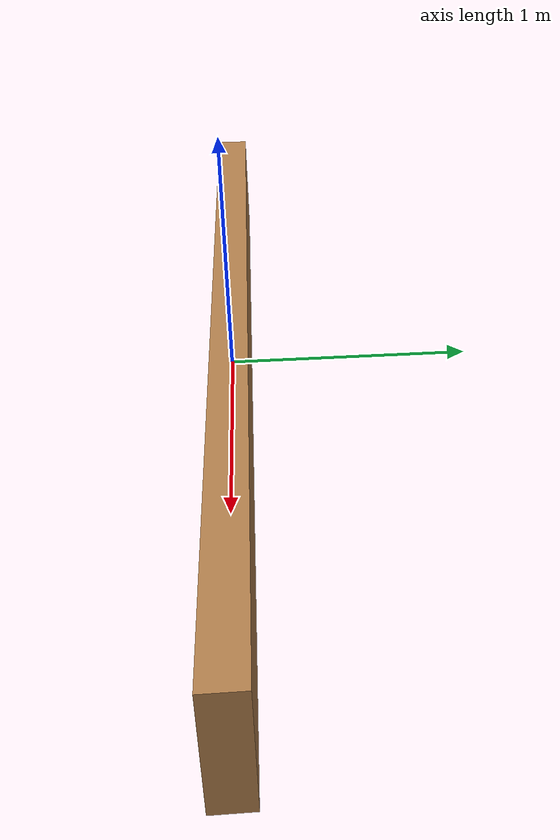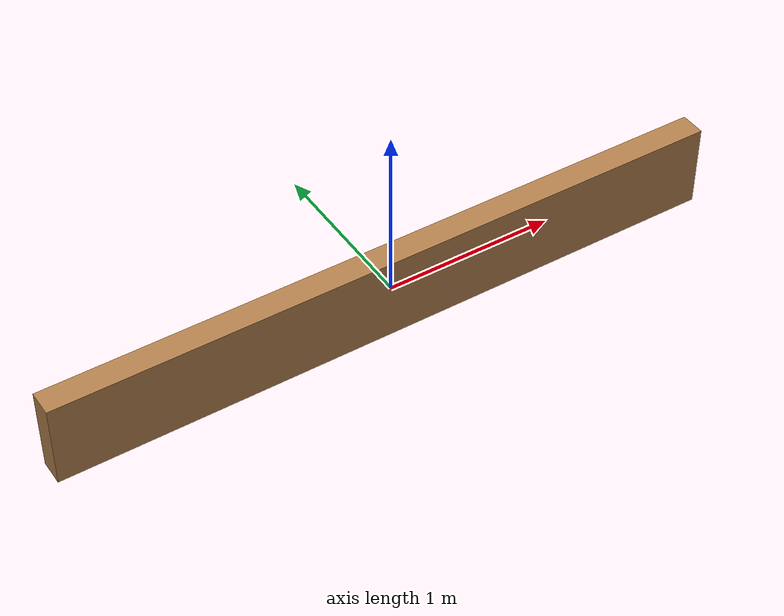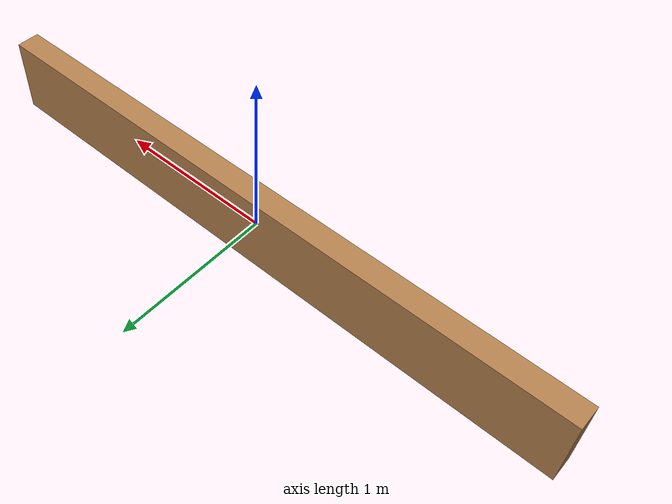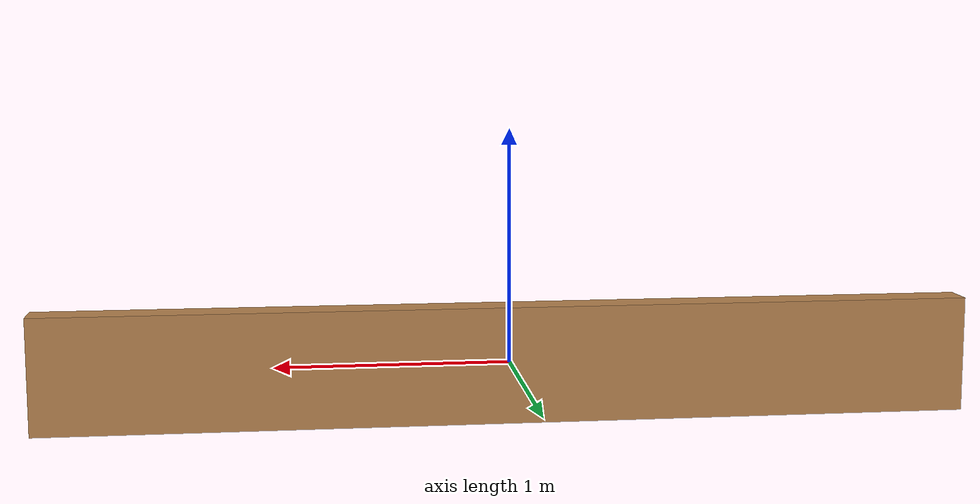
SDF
<?xml version="1.0" ?>
<sdf version="1.6">
  <!--Python Testing-->
  <model name="random">
    <pose frame="">0 0 0 0 0 0</pose>
    <link name="Wall_0">
      <collisions name="Wall_0_Collision">
        <geometry>
          <box>
            <size>4 0.15 0.5</size>
          </box>
          <pose frame="">0 1.925 0 0 -0 0</pose>
        </geometry>
      </collisions>
      <visual name="Wall_0_Visual">
        <geometry>
          <box>
            <size>4 0.15 0.5</size>
          </box>
          <pose frame="">0 1.925 0 0 -0 0</pose>
          <pose frame="">0.000000 0.000000 0.5 0 0 0.000000</pose>
        </geometry>
        <material>
          <script>
            <uri>file://media/materials/scripts/gazebo.material&lt;/uri&gt;</uri>
            <name>Gazebo/Wood</name>
          </script>
          <ambient>1 1 1 1</ambient>
        </material>
      </visual>
    </link>
    <link name="Wall_1">
      <collisions name="Wall_1_Collision">
        <geometry>
          <box>
            <size>4 0.15 0.5</size>
          </box>
          <pose frame="">0 1.925 0 0 -0 0</pose>
        </geometry>
      </collisions>
      <visual name="Wall_1_Visual">
        <geometry>
          <box>
            <size>4 0.15 0.5</size>
          </box>
          <pose frame="">0 1.925 0 0 -0 0</pose>
          <pose frame="">1.000000 0.000000 0.5 0 0 0.000000</pose>
        </geometry>
        <material>
          <script>
            <uri>file://media/materials/scripts/gazebo.material&lt;/uri&gt;</uri>
            <name>Gazebo/Wood</name>
          </script>
          <ambient>1 1 1 1</ambient>
        </material>
      </visual>
    </link>
    <link name="Wall_2">
      <collisions name="Wall_2_Collision">
        <geometry>
          <box>
            <size>4 0.15 0.5</size>
          </box>
          <pose frame="">0 1.925 0 0 -0 0</pose>
        </geometry>
      </collisions>
      <visual name="Wall_2_Visual">
        <geometry>
          <box>
            <size>4 0.15 0.5</size>
          </box>
          <pose frame="">0 1.925 0 0 -0 0</pose>
          <pose frame="">2.000000 0.000000 0.5 0 0 0.000000</pose>
        </geometry>
        <material>
          <script>
            <uri>file://media/materials/scripts/gazebo.material&lt;/uri&gt;</uri>
            <name>Gazebo/Wood</name>
          </script>
          <ambient>1 1 1 1</ambient>
        </material>
      </visual>
    </link>
    <link name="Wall_3">
      <collisions name="Wall_3_Collision">
        <geometry>
          <box>
            <size>4 0.15 0.5</size>
          </box>
          <pose frame="">0 1.925 0 0 -0 0</pose>
        </geometry>
      </collisions>
      <visual name="Wall_3_Visual">
        <geometry>
          <box>
            <size>4 0.15 0.5</size>
          </box>
          <pose frame="">0 1.925 0 0 -0 0</pose>
          <pose frame="">3.000000 0.000000 0.5 0 0 0.000000</pose>
        </geometry>
        <material>
          <script>
            <uri>file://media/materials/scripts/gazebo.material&lt;/uri&gt;</uri>
            <name>Gazebo/Wood</name>
          </script>
          <ambient>1 1 1 1</ambient>
        </material>
      </visual>
    </link>
  </model>
</sdf>
